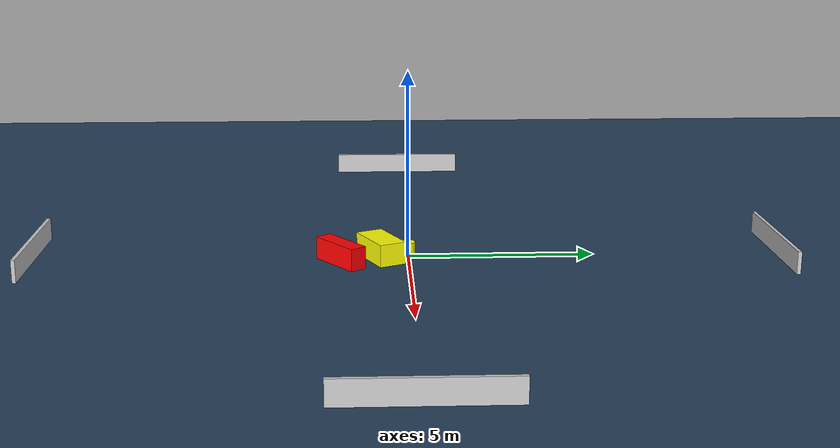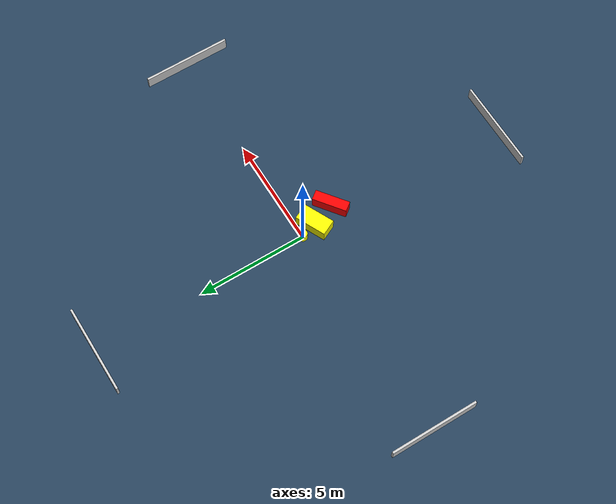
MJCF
<?xml version="1.0" ?>
<mujoco model="generated_environment">
  <option timestep="0.01" integrator="RK4" cone="elliptic"/>
  <default>
    <geom density="1"/>
  </default>
  <asset>
    <texture builtin="gradient" height="3072" name="skybox" rgb1="0.3 0.5 0.7" rgb2="0 0 0" type="skybox" width="512"/>
    <texture builtin="checker" height="300" name="groundplane" rgb1="0.2 0.3 0.4" rgb2="0.1 0.2 0.3" type="2d" width="300"/>
    <material name="groundplane" reflectance="0.2" texrepeat="5 5" texture="groundplane"/>
  </asset>
  <worldbody>
    <light dir="0 0 -1" directional="true" pos="0 0 1.5"/>
    <geom condim="3" friction="0.5 0.005 0.001" material="groundplane" name="floor" pos="0 0 0" size="0 0 0.05" type="plane"/>
    <body name="walls">
      <geom name="wall_1" condim="4" pos="-10.0 0.0 0.3" rgba="0.800000011920929 0.800000011920929 0.800000011920929 1.0" size="0.05 2.0 0.3" type="box"/>
      <geom name="wall_2" condim="4" pos="10.0 0.0 0.3" rgba="0.800000011920929 0.800000011920929 0.800000011920929 1.0" size="0.05 2.0 0.3" type="box"/>
      <geom name="wall_3" condim="4" pos="0.0 -10.0 0.3" rgba="0.800000011920929 0.800000011920929 0.800000011920929 1.0" size="2.0 0.05 0.3" type="box"/>
      <geom name="wall_4" condim="4" pos="0.0 10.0 0.3" rgba="0.800000011920929 0.800000011920929 0.800000011920929 1.0" size="2.0 0.05 0.3" type="box"/>
    </body>
    <body name="robot">
      <joint name="joint_x" type="slide" pos="0 0 0" axis="1 0 0"/>
      <joint name="joint_y" type="slide" pos="0 0 0" axis="0 1 0"/>
      <geom name="robot" type="cylinder" pos="0.0 0.0 0.2" size="0.2 0.2 0.0" mass="5.0" friction="1.0 0.005 0.0001" condim="4" rgba="1.0 1.0 0.0 1.0"/>
    </body>
    <body name="obstacle_1_movable">
      <geom name="obstacle_1_movable" condim="4" pos="0.2248725748826981 -0.7229511769466697 0.3" euler="0 0 25.61670424541901" friction="0.0 0.005 0.001" rgba="1.0 1.0 0.0 1.0" size="0.7170357739408968 0.37088006901593495 0.3" type="box" mass="0.1"/>
      <joint type="free"/>
    </body>
    <body name="obstacle_2_static">
      <geom name="obstacle_2_static" condim="4" pos="0.6104235080000208 -1.7878819702045095 0.3" euler="0 0 127.00986466088382" friction="0.0 0.005 0.001" rgba="1.0 0.0 0.0 1.0" size="0.2316976768292307 0.7813513664000835 0.3" type="box"/>
    </body>
  </worldbody>
  <actuator>
    <motor name="actuator_x" joint="joint_x" gear="1" ctrlrange="-1 1"/>
    <motor name="actuator_y" joint="joint_y" gear="1" ctrlrange="-1 1"/>
  </actuator>
</mujoco>
